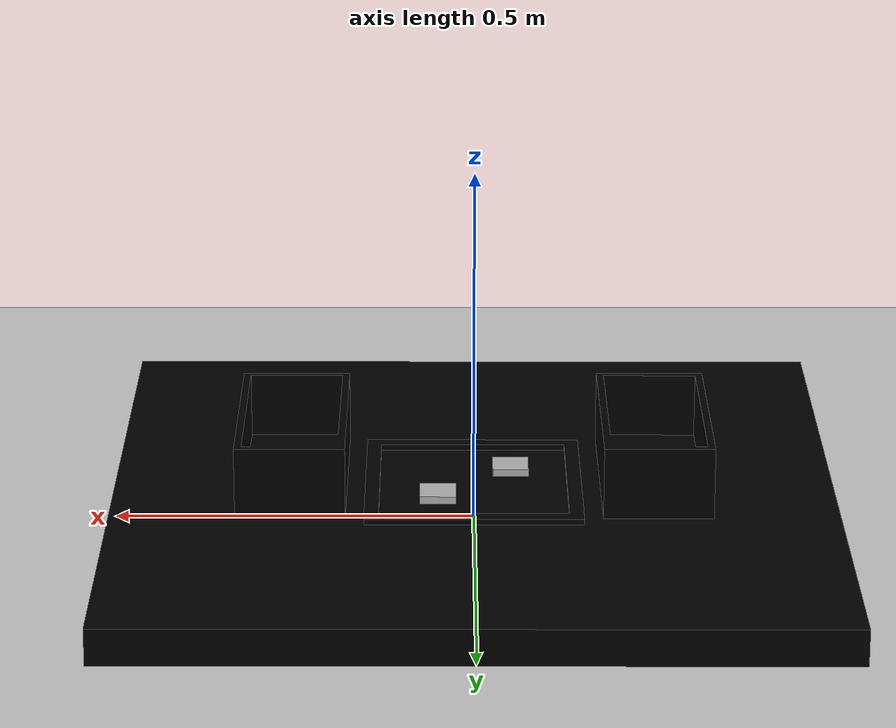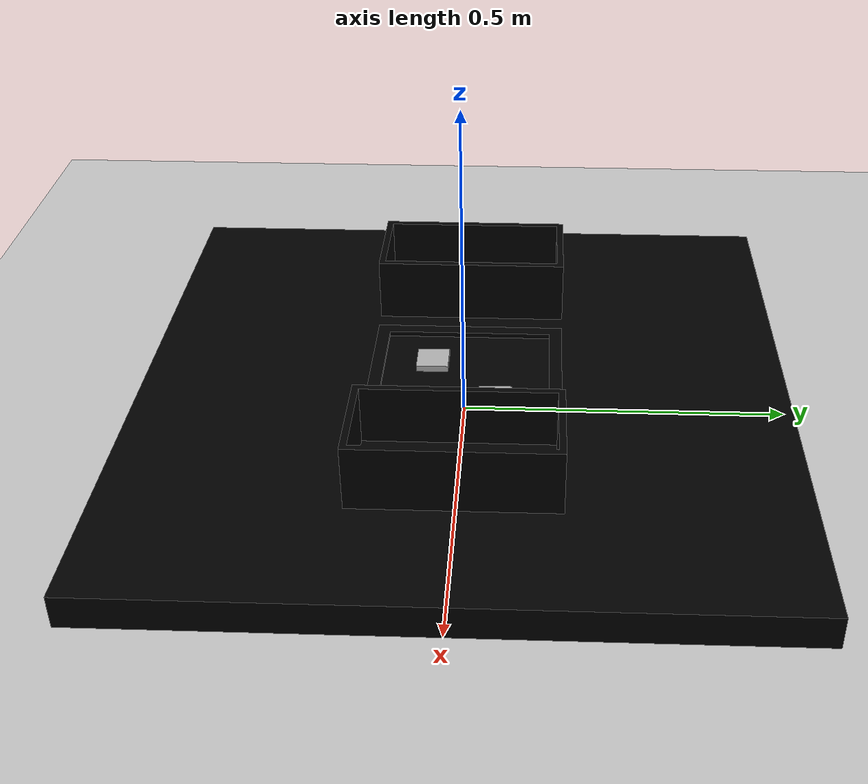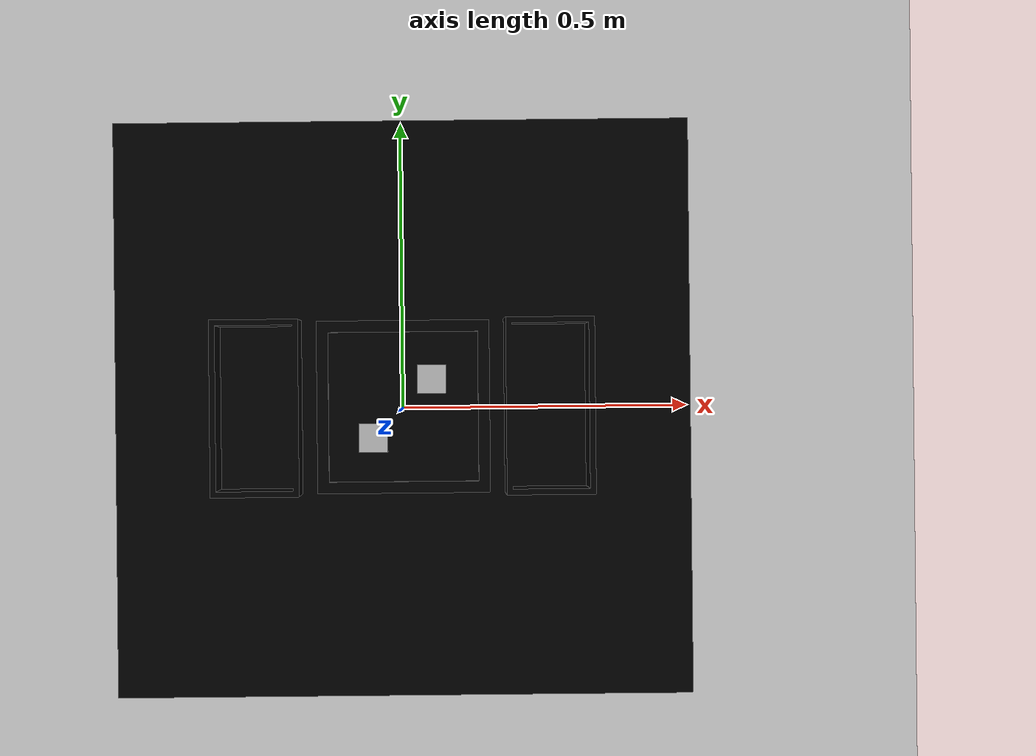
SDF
<sdf version="1.6">
 <world name="default">
  <model name="ground_plane">
   <static>1</static>
   <link name="link">
    <collision name="collision">
     <geometry><plane><normal>0 0 1</normal><size>100 100</size></plane></geometry>
     <surface>
      <contact><collide_bitmask>65535</collide_bitmask></contact>
      <friction><ode><mu>100</mu><mu2>50</mu2></ode></friction>
     </surface>
    </collision>
    <visual name="visual">
     <cast_shadows>0</cast_shadows>
     <geometry><plane><normal>0 0 1</normal><size>100 100</size></plane></geometry>
     <material>
      <script><uri>file://media/materials/scripts/gazebo.material</uri><name>Gazebo/Grey</name></script>
     </material>
    </visual>
   </link>
  </model>
  <light name="sun" type="directional">
   <pose>0 0 10 0 -0 0</pose>
   <diffuse>0.8 0.8 0.8 1</diffuse>
   <specular>0.2 0.2 0.2 1</specular>
   <attenuation>
    <range>1000</range>
    <constant>0.9</constant>
    <linear>0.01</linear>
    <quadratic>0.001</quadratic>
   </attenuation>
   <direction>-0.5 0.1 -0.9</direction>
  </light>
  <gravity>0 0 -9.8</gravity>
  <magnetic_field>6e-06 2.3e-05 -4.2e-05</magnetic_field>
  <atmosphere type="adiabatic"/>
  <physics name="default_physics" default="0" type="ode">
   <max_step_size>0.001</max_step_size>
   <real_time_factor>1</real_time_factor>
   <real_time_update_rate>1000</real_time_update_rate>
  </physics>
  <scene><ambient>0.4 0.4 0.4 1</ambient><background>0.7 0.7 0.7 1</background><shadows>1</shadows></scene>
  <audio><device>default</device></audio>
  <spherical_coordinates>
   <surface_model>EARTH_WGS84</surface_model>
   <latitude_deg>0</latitude_deg>
   <longitude_deg>0</longitude_deg>
   <elevation>0</elevation>
   <heading_deg>0</heading_deg>
  </spherical_coordinates>
  <model name="Field Base">
   <link name="base">
    <inertial><mass>100</mass></inertial>
    <visual name="base">
     <geometry><box><size>1 1 0.1</size></box></geometry>
     <material>
      <ambient>0 0 0 1</ambient>
      <diffuse>0 0 0 1</diffuse>
      <specular>0 0 0 0</specular>
      <emissive>1 1 1 1</emissive>
     </material>
    </visual>
    <collision name="base_col_box_on_ground">
     <pose>0 0 0.01 0 -0 0</pose>
     <geometry><box><size>1 1 0.1</size></box></geometry>
    </collision>
   </link>
   <static>1</static>
  </model>
  <model name="dropzone_cross">
   <pose>0.25 0.05 0.05 0 -0 0</pose>
   <link name="link">
    <inertial>
     <mass>1</mass>
     <inertia>
      <ixx>0.0083</ixx>
      <iyy>0.0093375</iyy>
      <izz>0.0026975</izz>
      <ixy>0</ixy>
      <ixz>0</ixz>
      <iyz>0</iyz>
     </inertia>
    </inertial>
    <collision name="collision">
     <geometry><mesh><uri>model://dropzone/meshes/dropzone.dae</uri></mesh></geometry>
    </collision>
    <visual name="visual">
     <geometry><mesh><uri>model://dropzone/meshes/dropzone.dae</uri></mesh></geometry>
     <material>
      <ambient>0 0 0 1</ambient>
      <diffuse>0 0 0 1</diffuse>
      <specular>0 0 0 0</specular>
      <emissive>0 0 0 1</emissive>
     </material>
    </visual>
   </link>
   <static>1</static>
  </model>
  <model name="dropzone_cross_0">
   <pose>-0.25 0.05 0.05 0 -0 0</pose>
   <link name="link">
    <inertial>
     <mass>1</mass>
     <inertia>
      <ixx>0.0083</ixx>
      <iyy>0.0093375</iyy>
      <izz>0.0026975</izz>
      <ixy>0</ixy>
      <ixz>0</ixz>
      <iyz>0</iyz>
     </inertia>
    </inertial>
    <collision name="collision">
     <geometry><mesh><uri>model://dropzone/meshes/dropzone.dae</uri></mesh></geometry>
    </collision>
    <visual name="visual">
     <geometry><mesh><uri>model://dropzone/meshes/dropzone.dae</uri></mesh></geometry>
     <material>
      <ambient>0 0 0 1</ambient>
      <diffuse>0 0 0 1</diffuse>
      <specular>0 0 0 0</specular>
      <emissive>0 0 0 1</emissive>
     </material>
    </visual>
   </link>
   <static>1</static>
  </model>
  <model name="field">
   <pose>-0.15 -0.15 0.05 0 -0 0</pose>
   <static>1</static>
   <link name="link">
    <inertial>
     <mass>1</mass>
     <inertia>
      <ixx>0.00748868</ixx>
      <iyy>0.00748868</iyy>
      <izz>0.01494</izz>
      <ixy>0</ixy>
      <ixz>0</ixz>
      <iyz>0</iyz>
     </inertia>
    </inertial>
    <collision name="collision">
     <geometry><mesh><uri>model://field/meshes/Field.dae</uri></mesh></geometry>
    </collision>
    <visual name="visual">
     <geometry><mesh><uri>model://field/meshes/Field.dae</uri></mesh></geometry>
     <material>
      <ambient>0 0 0 1</ambient>
      <diffuse>0 0 0 1</diffuse>
      <specular>0 0 0 0</specular>
      <emissive>0 1 0 1</emissive>
     </material>
    </visual>
   </link>
   <static>1</static>
  </model>
  <model name="naught_object">
   <link name="base">
    <inertial>
     <mass>100</mass>
     <inertia><ixx>1</ixx><ixy>0</ixy><ixz>0</ixz><iyy>1</iyy><iyz>0</iyz><izz>1</izz></inertia>
    </inertial>
    <visual name="naught_object">
     <geometry><box><size>0.05 0.05 0.01</size></box></geometry>
     <material>
      <script>
       <uri>model://naught_object/materials/scripts</uri>
       <uri>model://naught_object/materials/textures</uri>
       <name>NaughtTexture</name>
      </script>
     </material>
    </visual>
    <collision name="naught_object_col_box">
     <pose>0 0 0.01 0 -0 0</pose>
     <geometry><box><size>0.05 0.05 0.01</size></box></geometry>
    </collision>
   </link>
   <pose>0.05 0.05 0.055 -0 -0 -2.3e-05</pose>
  </model>
  <model name="cross_object">
   <link name="base">
    <inertial>
     <mass>100</mass>
     <inertia><ixx>1</ixx><ixy>0</ixy><ixz>0</ixz><iyy>1</iyy><iyz>0</iyz><izz>1</izz></inertia>
    </inertial>
    <visual name="cross_object">
     <geometry><box><size>0.05 0.05 0.01</size></box></geometry>
     <material>
      <script>
       <uri>model://cross_object/materials/scripts</uri>
       <uri>model://cross_object/materials/textures</uri>
       <name>CrossTexture</name>
      </script>
     </material>
    </visual>
    <collision name="cross_object_col_box">
     <pose>0 0 0.01 0 -0 0</pose>
     <geometry><box><size>0.05 0.05 0.01</size></box></geometry>
    </collision>
   </link>
   <pose>-0.051686 -0.051685 0.054999 4e-05 -0 -1.2e-05</pose>
  </model>
 </world>
</sdf>
